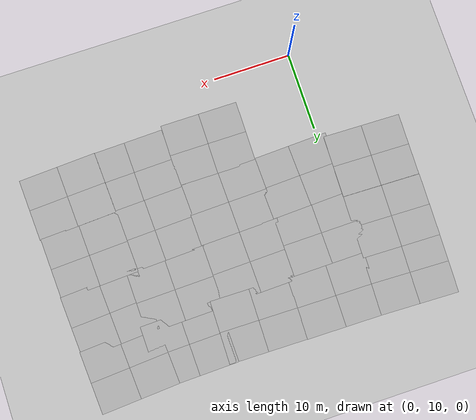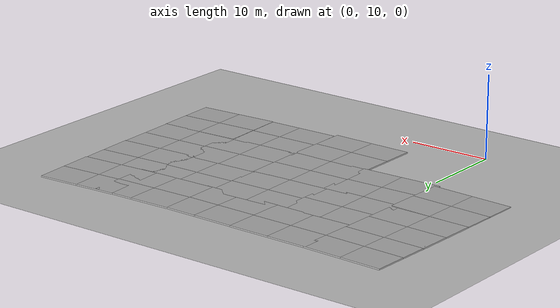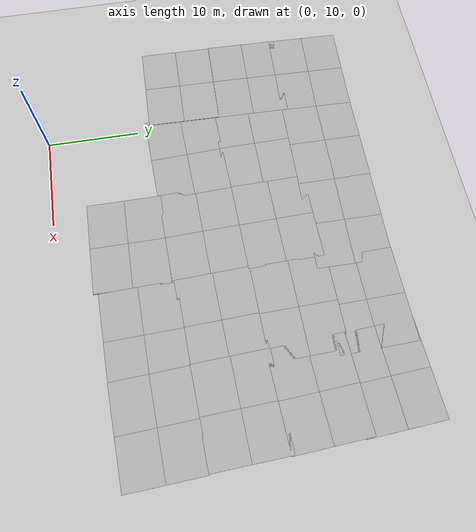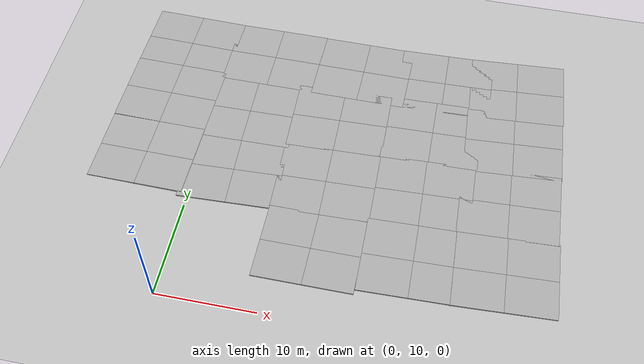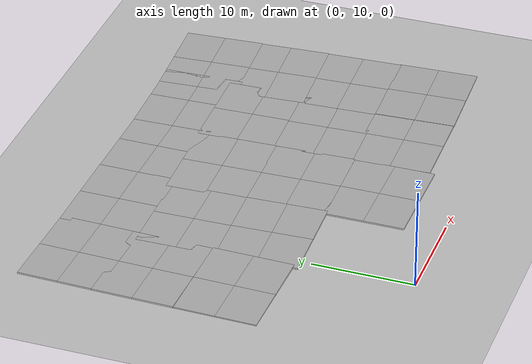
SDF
<sdf version="1.7">
 <world name="default">
  <model name="ground_plane">
   <static>1</static>
   <link name="link">
    <collision name="collision">
     <geometry><plane><normal>0 0 1</normal><size>100 100</size></plane></geometry>
     <surface><friction><ode><mu>100</mu><mu2>50</mu2></ode></friction></surface>
    </collision>
    <visual name="visual">
     <cast_shadows>0</cast_shadows>
     <geometry><plane><normal>0 0 1</normal><size>100 100</size></plane></geometry>
     <material>
      <script><uri>file://media/materials/scripts/gazebo.material</uri><name>Gazebo/Grey</name></script>
     </material>
    </visual>
   </link>
  </model>
  <model name="desert2_sample_7">
   <static>1</static>
   <link name="link">
    <collision name="collision"><geometry><box><size>8 10 0.2</size></box></geometry></collision>
    <visual name="visual_1">
     <pose>-2 2.5 0 0 -0 0</pose>
     <cast_shadows>0</cast_shadows>
     <geometry><box><size>4 5 0.2</size></box></geometry>
     <material>
      <script>
       <uri>model://desert2/materials/scripts</uri>
       <uri>model://desert2/materials/textures</uri>
       <name>vrc/mud</name>
      </script>
     </material>
    </visual>
    <visual name="visual_2">
     <pose>2 2.5 0 0 -0 0</pose>
     <cast_shadows>0</cast_shadows>
     <geometry><box><size>4 5 0.2</size></box></geometry>
     <material>
      <script>
       <uri>model://desert2/materials/scripts</uri>
       <uri>model://desert2/materials/textures</uri>
       <name>vrc/mud</name>
      </script>
     </material>
    </visual>
    <visual name="visual_3">
     <pose>2 -2.5 0 0 -0 0</pose>
     <cast_shadows>0</cast_shadows>
     <geometry><box><size>4 5 0.2</size></box></geometry>
     <material>
      <script>
       <uri>model://desert2/materials/scripts</uri>
       <uri>model://desert2/materials/textures</uri>
       <name>vrc/mud</name>
      </script>
     </material>
    </visual>
    <visual name="visual_4">
     <pose>-2 -2.5 0 0 -0 0</pose>
     <cast_shadows>0</cast_shadows>
     <geometry><box><size>4 5 0.2</size></box></geometry>
     <material>
      <script>
       <uri>model://desert2/materials/scripts</uri>
       <uri>model://desert2/materials/textures</uri>
       <name>vrc/mud</name>
      </script>
     </material>
    </visual>
   </link>
   <pose>-5.66168 25.5067 0.004447 0.010424 0.001386 -1.59096</pose>
  </model>
  <model name="desert2_sample_8">
   <static>1</static>
   <link name="link">
    <collision name="collision"><geometry><box><size>8 10 0.2</size></box></geometry></collision>
    <visual name="visual_1">
     <pose>-2 2.5 0 0 -0 0</pose>
     <cast_shadows>0</cast_shadows>
     <geometry><box><size>4 5 0.2</size></box></geometry>
     <material>
      <script>
       <uri>model://desert2/materials/scripts</uri>
       <uri>model://desert2/materials/textures</uri>
       <name>vrc/mud</name>
      </script>
     </material>
    </visual>
    <visual name="visual_2">
     <pose>2 2.5 0 0 -0 0</pose>
     <cast_shadows>0</cast_shadows>
     <geometry><box><size>4 5 0.2</size></box></geometry>
     <material>
      <script>
       <uri>model://desert2/materials/scripts</uri>
       <uri>model://desert2/materials/textures</uri>
       <name>vrc/mud</name>
      </script>
     </material>
    </visual>
    <visual name="visual_3">
     <pose>2 -2.5 0 0 -0 0</pose>
     <cast_shadows>0</cast_shadows>
     <geometry><box><size>4 5 0.2</size></box></geometry>
     <material>
      <script>
       <uri>model://desert2/materials/scripts</uri>
       <uri>model://desert2/materials/textures</uri>
       <name>vrc/mud</name>
      </script>
     </material>
    </visual>
    <visual name="visual_4">
     <pose>-2 -2.5 0 0 -0 0</pose>
     <cast_shadows>0</cast_shadows>
     <geometry><box><size>4 5 0.2</size></box></geometry>
     <material>
      <script>
       <uri>model://desert2/materials/scripts</uri>
       <uri>model://desert2/materials/textures</uri>
       <name>vrc/mud</name>
      </script>
     </material>
    </visual>
   </link>
   <pose>-5.50688 33.5237 0 0 0 -1.59348</pose>
  </model>
  <model name="desert2_sample_9">
   <static>1</static>
   <link name="link">
    <collision name="collision"><geometry><box><size>8 10 0.2</size></box></geometry></collision>
    <visual name="visual_1">
     <pose>-2 2.5 0 0 -0 0</pose>
     <cast_shadows>0</cast_shadows>
     <geometry><box><size>4 5 0.2</size></box></geometry>
     <material>
      <script>
       <uri>model://desert2/materials/scripts</uri>
       <uri>model://desert2/materials/textures</uri>
       <name>vrc/mud</name>
      </script>
     </material>
    </visual>
    <visual name="visual_2">
     <pose>2 2.5 0 0 -0 0</pose>
     <cast_shadows>0</cast_shadows>
     <geometry><box><size>4 5 0.2</size></box></geometry>
     <material>
      <script>
       <uri>model://desert2/materials/scripts</uri>
       <uri>model://desert2/materials/textures</uri>
       <name>vrc/mud</name>
      </script>
     </material>
    </visual>
    <visual name="visual_3">
     <pose>2 -2.5 0 0 -0 0</pose>
     <cast_shadows>0</cast_shadows>
     <geometry><box><size>4 5 0.2</size></box></geometry>
     <material>
      <script>
       <uri>model://desert2/materials/scripts</uri>
       <uri>model://desert2/materials/textures</uri>
       <name>vrc/mud</name>
      </script>
     </material>
    </visual>
    <visual name="visual_4">
     <pose>-2 -2.5 0 0 -0 0</pose>
     <cast_shadows>0</cast_shadows>
     <geometry><box><size>4 5 0.2</size></box></geometry>
     <material>
      <script>
       <uri>model://desert2/materials/scripts</uri>
       <uri>model://desert2/materials/textures</uri>
       <name>vrc/mud</name>
      </script>
     </material>
    </visual>
   </link>
   <pose>-5.29468 40.8805 0 0 0 -1.60132</pose>
  </model>
  <model name="desert2_sample_12">
   <static>1</static>
   <link name="link">
    <collision name="collision"><geometry><box><size>8 10 0.2</size></box></geometry></collision>
    <visual name="visual_1">
     <pose>-2 2.5 0 0 -0 0</pose>
     <cast_shadows>0</cast_shadows>
     <geometry><box><size>4 5 0.2</size></box></geometry>
     <material>
      <script>
       <uri>model://desert2/materials/scripts</uri>
       <uri>model://desert2/materials/textures</uri>
       <name>vrc/mud</name>
      </script>
     </material>
    </visual>
    <visual name="visual_2">
     <pose>2 2.5 0 0 -0 0</pose>
     <cast_shadows>0</cast_shadows>
     <geometry><box><size>4 5 0.2</size></box></geometry>
     <material>
      <script>
       <uri>model://desert2/materials/scripts</uri>
       <uri>model://desert2/materials/textures</uri>
       <name>vrc/mud</name>
      </script>
     </material>
    </visual>
    <visual name="visual_3">
     <pose>2 -2.5 0 0 -0 0</pose>
     <cast_shadows>0</cast_shadows>
     <geometry><box><size>4 5 0.2</size></box></geometry>
     <material>
      <script>
       <uri>model://desert2/materials/scripts</uri>
       <uri>model://desert2/materials/textures</uri>
       <name>vrc/mud</name>
      </script>
     </material>
    </visual>
    <visual name="visual_4">
     <pose>-2 -2.5 0 0 -0 0</pose>
     <cast_shadows>0</cast_shadows>
     <geometry><box><size>4 5 0.2</size></box></geometry>
     <material>
      <script>
       <uri>model://desert2/materials/scripts</uri>
       <uri>model://desert2/materials/textures</uri>
       <name>vrc/mud</name>
      </script>
     </material>
    </visual>
   </link>
   <pose>3.70647 25.1298 -0 0 0 -1.53348</pose>
  </model>
  <model name="desert2_sample_13">
   <static>1</static>
   <link name="link">
    <collision name="collision"><geometry><box><size>8 10 0.2</size></box></geometry></collision>
    <visual name="visual_1">
     <pose>-2 2.5 0 0 -0 0</pose>
     <cast_shadows>0</cast_shadows>
     <geometry><box><size>4 5 0.2</size></box></geometry>
     <material>
      <script>
       <uri>model://desert2/materials/scripts</uri>
       <uri>model://desert2/materials/textures</uri>
       <name>vrc/mud</name>
      </script>
     </material>
    </visual>
    <visual name="visual_2">
     <pose>2 2.5 0 0 -0 0</pose>
     <cast_shadows>0</cast_shadows>
     <geometry><box><size>4 5 0.2</size></box></geometry>
     <material>
      <script>
       <uri>model://desert2/materials/scripts</uri>
       <uri>model://desert2/materials/textures</uri>
       <name>vrc/mud</name>
      </script>
     </material>
    </visual>
    <visual name="visual_3">
     <pose>2 -2.5 0 0 -0 0</pose>
     <cast_shadows>0</cast_shadows>
     <geometry><box><size>4 5 0.2</size></box></geometry>
     <material>
      <script>
       <uri>model://desert2/materials/scripts</uri>
       <uri>model://desert2/materials/textures</uri>
       <name>vrc/mud</name>
      </script>
     </material>
    </visual>
    <visual name="visual_4">
     <pose>-2 -2.5 0 0 -0 0</pose>
     <cast_shadows>0</cast_shadows>
     <geometry><box><size>4 5 0.2</size></box></geometry>
     <material>
      <script>
       <uri>model://desert2/materials/scripts</uri>
       <uri>model://desert2/materials/textures</uri>
       <name>vrc/mud</name>
      </script>
     </material>
    </visual>
   </link>
   <pose>3.4677 32.8125 0 0 0 -1.55875</pose>
  </model>
  <model name="desert2_sample_14">
   <static>1</static>
   <link name="link">
    <collision name="collision"><geometry><box><size>8 10 0.2</size></box></geometry></collision>
    <visual name="visual_1">
     <pose>-2 2.5 0 0 -0 0</pose>
     <cast_shadows>0</cast_shadows>
     <geometry><box><size>4 5 0.2</size></box></geometry>
     <material>
      <script>
       <uri>model://desert2/materials/scripts</uri>
       <uri>model://desert2/materials/textures</uri>
       <name>vrc/mud</name>
      </script>
     </material>
    </visual>
    <visual name="visual_2">
     <pose>2 2.5 0 0 -0 0</pose>
     <cast_shadows>0</cast_shadows>
     <geometry><box><size>4 5 0.2</size></box></geometry>
     <material>
      <script>
       <uri>model://desert2/materials/scripts</uri>
       <uri>model://desert2/materials/textures</uri>
       <name>vrc/mud</name>
      </script>
     </material>
    </visual>
    <visual name="visual_3">
     <pose>2 -2.5 0 0 -0 0</pose>
     <cast_shadows>0</cast_shadows>
     <geometry><box><size>4 5 0.2</size></box></geometry>
     <material>
      <script>
       <uri>model://desert2/materials/scripts</uri>
       <uri>model://desert2/materials/textures</uri>
       <name>vrc/mud</name>
      </script>
     </material>
    </visual>
    <visual name="visual_4">
     <pose>-2 -2.5 0 0 -0 0</pose>
     <cast_shadows>0</cast_shadows>
     <geometry><box><size>4 5 0.2</size></box></geometry>
     <material>
      <script>
       <uri>model://desert2/materials/scripts</uri>
       <uri>model://desert2/materials/textures</uri>
       <name>vrc/mud</name>
      </script>
     </material>
    </visual>
   </link>
   <pose>4.33279 40.6976 0 0 0 -1.57803</pose>
  </model>
  <model name="desert2_sample_16">
   <static>1</static>
   <link name="link">
    <collision name="collision"><geometry><box><size>8 10 0.2</size></box></geometry></collision>
    <visual name="visual_1">
     <pose>-2 2.5 0 0 -0 0</pose>
     <cast_shadows>0</cast_shadows>
     <geometry><box><size>4 5 0.2</size></box></geometry>
     <material>
      <script>
       <uri>model://desert2/materials/scripts</uri>
       <uri>model://desert2/materials/textures</uri>
       <name>vrc/mud</name>
      </script>
     </material>
    </visual>
    <visual name="visual_2">
     <pose>2 2.5 0 0 -0 0</pose>
     <cast_shadows>0</cast_shadows>
     <geometry><box><size>4 5 0.2</size></box></geometry>
     <material>
      <script>
       <uri>model://desert2/materials/scripts</uri>
       <uri>model://desert2/materials/textures</uri>
       <name>vrc/mud</name>
      </script>
     </material>
    </visual>
    <visual name="visual_3">
     <pose>2 -2.5 0 0 -0 0</pose>
     <cast_shadows>0</cast_shadows>
     <geometry><box><size>4 5 0.2</size></box></geometry>
     <material>
      <script>
       <uri>model://desert2/materials/scripts</uri>
       <uri>model://desert2/materials/textures</uri>
       <name>vrc/mud</name>
      </script>
     </material>
    </visual>
    <visual name="visual_4">
     <pose>-2 -2.5 0 0 -0 0</pose>
     <cast_shadows>0</cast_shadows>
     <geometry><box><size>4 5 0.2</size></box></geometry>
     <material>
      <script>
       <uri>model://desert2/materials/scripts</uri>
       <uri>model://desert2/materials/textures</uri>
       <name>vrc/mud</name>
      </script>
     </material>
    </visual>
   </link>
   <pose>13.3363 17.6411 0 0 0 -1.5737</pose>
  </model>
  <model name="desert2_sample_17">
   <static>1</static>
   <link name="link">
    <collision name="collision"><geometry><box><size>8 10 0.2</size></box></geometry></collision>
    <visual name="visual_1">
     <pose>-2 2.5 0 0 -0 0</pose>
     <cast_shadows>0</cast_shadows>
     <geometry><box><size>4 5 0.2</size></box></geometry>
     <material>
      <script>
       <uri>model://desert2/materials/scripts</uri>
       <uri>model://desert2/materials/textures</uri>
       <name>vrc/mud</name>
      </script>
     </material>
    </visual>
    <visual name="visual_2">
     <pose>2 2.5 0 0 -0 0</pose>
     <cast_shadows>0</cast_shadows>
     <geometry><box><size>4 5 0.2</size></box></geometry>
     <material>
      <script>
       <uri>model://desert2/materials/scripts</uri>
       <uri>model://desert2/materials/textures</uri>
       <name>vrc/mud</name>
      </script>
     </material>
    </visual>
    <visual name="visual_3">
     <pose>2 -2.5 0 0 -0 0</pose>
     <cast_shadows>0</cast_shadows>
     <geometry><box><size>4 5 0.2</size></box></geometry>
     <material>
      <script>
       <uri>model://desert2/materials/scripts</uri>
       <uri>model://desert2/materials/textures</uri>
       <name>vrc/mud</name>
      </script>
     </material>
    </visual>
    <visual name="visual_4">
     <pose>-2 -2.5 0 0 -0 0</pose>
     <cast_shadows>0</cast_shadows>
     <geometry><box><size>4 5 0.2</size></box></geometry>
     <material>
      <script>
       <uri>model://desert2/materials/scripts</uri>
       <uri>model://desert2/materials/textures</uri>
       <name>vrc/mud</name>
      </script>
     </material>
    </visual>
   </link>
   <pose>13.2119 25.5266 0 0 0 -1.54503</pose>
  </model>
  <model name="desert2_sample_18">
   <static>1</static>
   <link name="link">
    <collision name="collision"><geometry><box><size>8 10 0.2</size></box></geometry></collision>
    <visual name="visual_1">
     <pose>-2 2.5 0 0 -0 0</pose>
     <cast_shadows>0</cast_shadows>
     <geometry><box><size>4 5 0.2</size></box></geometry>
     <material>
      <script>
       <uri>model://desert2/materials/scripts</uri>
       <uri>model://desert2/materials/textures</uri>
       <name>vrc/mud</name>
      </script>
     </material>
    </visual>
    <visual name="visual_2">
     <pose>2 2.5 0 0 -0 0</pose>
     <cast_shadows>0</cast_shadows>
     <geometry><box><size>4 5 0.2</size></box></geometry>
     <material>
      <script>
       <uri>model://desert2/materials/scripts</uri>
       <uri>model://desert2/materials/textures</uri>
       <name>vrc/mud</name>
      </script>
     </material>
    </visual>
    <visual name="visual_3">
     <pose>2 -2.5 0 0 -0 0</pose>
     <cast_shadows>0</cast_shadows>
     <geometry><box><size>4 5 0.2</size></box></geometry>
     <material>
      <script>
       <uri>model://desert2/materials/scripts</uri>
       <uri>model://desert2/materials/textures</uri>
       <name>vrc/mud</name>
      </script>
     </material>
    </visual>
    <visual name="visual_4">
     <pose>-2 -2.5 0 0 -0 0</pose>
     <cast_shadows>0</cast_shadows>
     <geometry><box><size>4 5 0.2</size></box></geometry>
     <material>
      <script>
       <uri>model://desert2/materials/scripts</uri>
       <uri>model://desert2/materials/textures</uri>
       <name>vrc/mud</name>
      </script>
     </material>
    </visual>
   </link>
   <pose>13.0324 33.4411 0 0 0 -1.54556</pose>
  </model>
  <model name="desert2_sample_19">
   <static>1</static>
   <link name="link">
    <collision name="collision"><geometry><box><size>8 10 0.2</size></box></geometry></collision>
    <visual name="visual_1">
     <pose>-2 2.5 0 0 -0 0</pose>
     <cast_shadows>0</cast_shadows>
     <geometry><box><size>4 5 0.2</size></box></geometry>
     <material>
      <script>
       <uri>model://desert2/materials/scripts</uri>
       <uri>model://desert2/materials/textures</uri>
       <name>vrc/mud</name>
      </script>
     </material>
    </visual>
    <visual name="visual_2">
     <pose>2 2.5 0 0 -0 0</pose>
     <cast_shadows>0</cast_shadows>
     <geometry><box><size>4 5 0.2</size></box></geometry>
     <material>
      <script>
       <uri>model://desert2/materials/scripts</uri>
       <uri>model://desert2/materials/textures</uri>
       <name>vrc/mud</name>
      </script>
     </material>
    </visual>
    <visual name="visual_3">
     <pose>2 -2.5 0 0 -0 0</pose>
     <cast_shadows>0</cast_shadows>
     <geometry><box><size>4 5 0.2</size></box></geometry>
     <material>
      <script>
       <uri>model://desert2/materials/scripts</uri>
       <uri>model://desert2/materials/textures</uri>
       <name>vrc/mud</name>
      </script>
     </material>
    </visual>
    <visual name="visual_4">
     <pose>-2 -2.5 0 0 -0 0</pose>
     <cast_shadows>0</cast_shadows>
     <geometry><box><size>4 5 0.2</size></box></geometry>
     <material>
      <script>
       <uri>model://desert2/materials/scripts</uri>
       <uri>model://desert2/materials/textures</uri>
       <name>vrc/mud</name>
      </script>
     </material>
    </visual>
   </link>
   <pose>14.2834 40.5757 0 0 0 -1.58177</pose>
  </model>
  <model name="desert2_sample_32">
   <static>1</static>
   <link name="link">
    <collision name="collision"><geometry><box><size>8 10 0.2</size></box></geometry></collision>
    <visual name="visual_1">
     <pose>-2 2.5 0 0 -0 0</pose>
     <cast_shadows>0</cast_shadows>
     <geometry><box><size>4 5 0.2</size></box></geometry>
     <material>
      <script>
       <uri>model://desert2/materials/scripts</uri>
       <uri>model://desert2/materials/textures</uri>
       <name>vrc/mud</name>
      </script>
     </material>
    </visual>
    <visual name="visual_2">
     <pose>2 2.5 0 0 -0 0</pose>
     <cast_shadows>0</cast_shadows>
     <geometry><box><size>4 5 0.2</size></box></geometry>
     <material>
      <script>
       <uri>model://desert2/materials/scripts</uri>
       <uri>model://desert2/materials/textures</uri>
       <name>vrc/mud</name>
      </script>
     </material>
    </visual>
    <visual name="visual_3">
     <pose>2 -2.5 0 0 -0 0</pose>
     <cast_shadows>0</cast_shadows>
     <geometry><box><size>4 5 0.2</size></box></geometry>
     <material>
      <script>
       <uri>model://desert2/materials/scripts</uri>
       <uri>model://desert2/materials/textures</uri>
       <name>vrc/mud</name>
      </script>
     </material>
    </visual>
    <visual name="visual_4">
     <pose>-2 -2.5 0 0 -0 0</pose>
     <cast_shadows>0</cast_shadows>
     <geometry><box><size>4 5 0.2</size></box></geometry>
     <material>
      <script>
       <uri>model://desert2/materials/scripts</uri>
       <uri>model://desert2/materials/textures</uri>
       <name>vrc/mud</name>
      </script>
     </material>
    </visual>
   </link>
   <pose>23.265 18.241 0 0 0 -1.54638</pose>
  </model>
  <model name="desert2_sample_33">
   <static>1</static>
   <link name="link">
    <collision name="collision"><geometry><box><size>8 10 0.2</size></box></geometry></collision>
    <visual name="visual_1">
     <pose>-2 2.5 0 0 -0 0</pose>
     <cast_shadows>0</cast_shadows>
     <geometry><box><size>4 5 0.2</size></box></geometry>
     <material>
      <script>
       <uri>model://desert2/materials/scripts</uri>
       <uri>model://desert2/materials/textures</uri>
       <name>vrc/mud</name>
      </script>
     </material>
    </visual>
    <visual name="visual_2">
     <pose>2 2.5 0 0 -0 0</pose>
     <cast_shadows>0</cast_shadows>
     <geometry><box><size>4 5 0.2</size></box></geometry>
     <material>
      <script>
       <uri>model://desert2/materials/scripts</uri>
       <uri>model://desert2/materials/textures</uri>
       <name>vrc/mud</name>
      </script>
     </material>
    </visual>
    <visual name="visual_3">
     <pose>2 -2.5 0 0 -0 0</pose>
     <cast_shadows>0</cast_shadows>
     <geometry><box><size>4 5 0.2</size></box></geometry>
     <material>
      <script>
       <uri>model://desert2/materials/scripts</uri>
       <uri>model://desert2/materials/textures</uri>
       <name>vrc/mud</name>
      </script>
     </material>
    </visual>
    <visual name="visual_4">
     <pose>-2 -2.5 0 0 -0 0</pose>
     <cast_shadows>0</cast_shadows>
     <geometry><box><size>4 5 0.2</size></box></geometry>
     <material>
      <script>
       <uri>model://desert2/materials/scripts</uri>
       <uri>model://desert2/materials/textures</uri>
       <name>vrc/mud</name>
      </script>
     </material>
    </visual>
   </link>
   <pose>32.0988 18.5361 0.003086 -0.006221 0.001803 -1.52544</pose>
  </model>
  <model name="desert2_sample_22">
   <static>1</static>
   <link name="link">
    <collision name="collision"><geometry><box><size>8 10 0.2</size></box></geometry></collision>
    <visual name="visual_1">
     <pose>-2 2.5 0 0 -0 0</pose>
     <cast_shadows>0</cast_shadows>
     <geometry><box><size>4 5 0.2</size></box></geometry>
     <material>
      <script>
       <uri>model://desert2/materials/scripts</uri>
       <uri>model://desert2/materials/textures</uri>
       <name>vrc/mud</name>
      </script>
     </material>
    </visual>
    <visual name="visual_2">
     <pose>2 2.5 0 0 -0 0</pose>
     <cast_shadows>0</cast_shadows>
     <geometry><box><size>4 5 0.2</size></box></geometry>
     <material>
      <script>
       <uri>model://desert2/materials/scripts</uri>
       <uri>model://desert2/materials/textures</uri>
       <name>vrc/mud</name>
      </script>
     </material>
    </visual>
    <visual name="visual_3">
     <pose>2 -2.5 0 0 -0 0</pose>
     <cast_shadows>0</cast_shadows>
     <geometry><box><size>4 5 0.2</size></box></geometry>
     <material>
      <script>
       <uri>model://desert2/materials/scripts</uri>
       <uri>model://desert2/materials/textures</uri>
       <name>vrc/mud</name>
      </script>
     </material>
    </visual>
    <visual name="visual_4">
     <pose>-2 -2.5 0 0 -0 0</pose>
     <cast_shadows>0</cast_shadows>
     <geometry><box><size>4 5 0.2</size></box></geometry>
     <material>
      <script>
       <uri>model://desert2/materials/scripts</uri>
       <uri>model://desert2/materials/textures</uri>
       <name>vrc/mud</name>
      </script>
     </material>
    </visual>
   </link>
   <pose>22.9946 26.0083 0 0 0 -1.53554</pose>
  </model>
  <model name="desert2_sample_23">
   <static>1</static>
   <link name="link">
    <collision name="collision"><geometry><box><size>8 10 0.2</size></box></geometry></collision>
    <visual name="visual_1">
     <pose>-2 2.5 0 0 -0 0</pose>
     <cast_shadows>0</cast_shadows>
     <geometry><box><size>4 5 0.2</size></box></geometry>
     <material>
      <script>
       <uri>model://desert2/materials/scripts</uri>
       <uri>model://desert2/materials/textures</uri>
       <name>vrc/mud</name>
      </script>
     </material>
    </visual>
    <visual name="visual_2">
     <pose>2 2.5 0 0 -0 0</pose>
     <cast_shadows>0</cast_shadows>
     <geometry><box><size>4 5 0.2</size></box></geometry>
     <material>
      <script>
       <uri>model://desert2/materials/scripts</uri>
       <uri>model://desert2/materials/textures</uri>
       <name>vrc/mud</name>
      </script>
     </material>
    </visual>
    <visual name="visual_3">
     <pose>2 -2.5 0 0 -0 0</pose>
     <cast_shadows>0</cast_shadows>
     <geometry><box><size>4 5 0.2</size></box></geometry>
     <material>
      <script>
       <uri>model://desert2/materials/scripts</uri>
       <uri>model://desert2/materials/textures</uri>
       <name>vrc/mud</name>
      </script>
     </material>
    </visual>
    <visual name="visual_4">
     <pose>-2 -2.5 0 0 -0 0</pose>
     <cast_shadows>0</cast_shadows>
     <geometry><box><size>4 5 0.2</size></box></geometry>
     <material>
      <script>
       <uri>model://desert2/materials/scripts</uri>
       <uri>model://desert2/materials/textures</uri>
       <name>vrc/mud</name>
      </script>
     </material>
    </visual>
   </link>
   <pose>31.6548 26.4364 0 0 0 -1.52993</pose>
  </model>
  <model name="desert2_sample_24">
   <static>1</static>
   <link name="link">
    <collision name="collision"><geometry><box><size>8 10 0.2</size></box></geometry></collision>
    <visual name="visual_1">
     <pose>-2 2.5 0 0 -0 0</pose>
     <cast_shadows>0</cast_shadows>
     <geometry><box><size>4 5 0.2</size></box></geometry>
     <material>
      <script>
       <uri>model://desert2/materials/scripts</uri>
       <uri>model://desert2/materials/textures</uri>
       <name>vrc/mud</name>
      </script>
     </material>
    </visual>
    <visual name="visual_2">
     <pose>2 2.5 0 0 -0 0</pose>
     <cast_shadows>0</cast_shadows>
     <geometry><box><size>4 5 0.2</size></box></geometry>
     <material>
      <script>
       <uri>model://desert2/materials/scripts</uri>
       <uri>model://desert2/materials/textures</uri>
       <name>vrc/mud</name>
      </script>
     </material>
    </visual>
    <visual name="visual_3">
     <pose>2 -2.5 0 0 -0 0</pose>
     <cast_shadows>0</cast_shadows>
     <geometry><box><size>4 5 0.2</size></box></geometry>
     <material>
      <script>
       <uri>model://desert2/materials/scripts</uri>
       <uri>model://desert2/materials/textures</uri>
       <name>vrc/mud</name>
      </script>
     </material>
    </visual>
    <visual name="visual_4">
     <pose>-2 -2.5 0 0 -0 0</pose>
     <cast_shadows>0</cast_shadows>
     <geometry><box><size>4 5 0.2</size></box></geometry>
     <material>
      <script>
       <uri>model://desert2/materials/scripts</uri>
       <uri>model://desert2/materials/textures</uri>
       <name>vrc/mud</name>
      </script>
     </material>
    </visual>
   </link>
   <pose>22.8875 33.7992 0 0 0 -1.54865</pose>
  </model>
  <model name="desert2_sample_25">
   <static>1</static>
   <link name="link">
    <collision name="collision"><geometry><box><size>8 10 0.2</size></box></geometry></collision>
    <visual name="visual_1">
     <pose>-2 2.5 0 0 -0 0</pose>
     <cast_shadows>0</cast_shadows>
     <geometry><box><size>4 5 0.2</size></box></geometry>
     <material>
      <script>
       <uri>model://desert2/materials/scripts</uri>
       <uri>model://desert2/materials/textures</uri>
       <name>vrc/mud</name>
      </script>
     </material>
    </visual>
    <visual name="visual_2">
     <pose>2 2.5 0 0 -0 0</pose>
     <cast_shadows>0</cast_shadows>
     <geometry><box><size>4 5 0.2</size></box></geometry>
     <material>
      <script>
       <uri>model://desert2/materials/scripts</uri>
       <uri>model://desert2/materials/textures</uri>
       <name>vrc/mud</name>
      </script>
     </material>
    </visual>
    <visual name="visual_3">
     <pose>2 -2.5 0 0 -0 0</pose>
     <cast_shadows>0</cast_shadows>
     <geometry><box><size>4 5 0.2</size></box></geometry>
     <material>
      <script>
       <uri>model://desert2/materials/scripts</uri>
       <uri>model://desert2/materials/textures</uri>
       <name>vrc/mud</name>
      </script>
     </material>
    </visual>
    <visual name="visual_4">
     <pose>-2 -2.5 0 0 -0 0</pose>
     <cast_shadows>0</cast_shadows>
     <geometry><box><size>4 5 0.2</size></box></geometry>
     <material>
      <script>
       <uri>model://desert2/materials/scripts</uri>
       <uri>model://desert2/materials/textures</uri>
       <name>vrc/mud</name>
      </script>
     </material>
    </visual>
   </link>
   <pose>31.344 34.0127 0 0 0 -1.51202</pose>
  </model>
  <model name="desert2_sample_26">
   <static>1</static>
   <link name="link">
    <collision name="collision"><geometry><box><size>8 10 0.2</size></box></geometry></collision>
    <visual name="visual_1">
     <pose>-2 2.5 0 0 -0 0</pose>
     <cast_shadows>0</cast_shadows>
     <geometry><box><size>4 5 0.2</size></box></geometry>
     <material>
      <script>
       <uri>model://desert2/materials/scripts</uri>
       <uri>model://desert2/materials/textures</uri>
       <name>vrc/mud</name>
      </script>
     </material>
    </visual>
    <visual name="visual_2">
     <pose>2 2.5 0 0 -0 0</pose>
     <cast_shadows>0</cast_shadows>
     <geometry><box><size>4 5 0.2</size></box></geometry>
     <material>
      <script>
       <uri>model://desert2/materials/scripts</uri>
       <uri>model://desert2/materials/textures</uri>
       <name>vrc/mud</name>
      </script>
     </material>
    </visual>
    <visual name="visual_3">
     <pose>2 -2.5 0 0 -0 0</pose>
     <cast_shadows>0</cast_shadows>
     <geometry><box><size>4 5 0.2</size></box></geometry>
     <material>
      <script>
       <uri>model://desert2/materials/scripts</uri>
       <uri>model://desert2/materials/textures</uri>
       <name>vrc/mud</name>
      </script>
     </material>
    </visual>
    <visual name="visual_4">
     <pose>-2 -2.5 0 0 -0 0</pose>
     <cast_shadows>0</cast_shadows>
     <geometry><box><size>4 5 0.2</size></box></geometry>
     <material>
      <script>
       <uri>model://desert2/materials/scripts</uri>
       <uri>model://desert2/materials/textures</uri>
       <name>vrc/mud</name>
      </script>
     </material>
    </visual>
   </link>
   <pose>23.247 40.6802 0 0 0 -1.54791</pose>
  </model>
  <model name="desert2_sample_27">
   <static>1</static>
   <link name="link">
    <collision name="collision"><geometry><box><size>8 10 0.2</size></box></geometry></collision>
    <visual name="visual_1">
     <pose>-2 2.5 0 0 -0 0</pose>
     <cast_shadows>0</cast_shadows>
     <geometry><box><size>4 5 0.2</size></box></geometry>
     <material>
      <script>
       <uri>model://desert2/materials/scripts</uri>
       <uri>model://desert2/materials/textures</uri>
       <name>vrc/mud</name>
      </script>
     </material>
    </visual>
    <visual name="visual_2">
     <pose>2 2.5 0 0 -0 0</pose>
     <cast_shadows>0</cast_shadows>
     <geometry><box><size>4 5 0.2</size></box></geometry>
     <material>
      <script>
       <uri>model://desert2/materials/scripts</uri>
       <uri>model://desert2/materials/textures</uri>
       <name>vrc/mud</name>
      </script>
     </material>
    </visual>
    <visual name="visual_3">
     <pose>2 -2.5 0 0 -0 0</pose>
     <cast_shadows>0</cast_shadows>
     <geometry><box><size>4 5 0.2</size></box></geometry>
     <material>
      <script>
       <uri>model://desert2/materials/scripts</uri>
       <uri>model://desert2/materials/textures</uri>
       <name>vrc/mud</name>
      </script>
     </material>
    </visual>
    <visual name="visual_4">
     <pose>-2 -2.5 0 0 -0 0</pose>
     <cast_shadows>0</cast_shadows>
     <geometry><box><size>4 5 0.2</size></box></geometry>
     <material>
      <script>
       <uri>model://desert2/materials/scripts</uri>
       <uri>model://desert2/materials/textures</uri>
       <name>vrc/mud</name>
      </script>
     </material>
    </visual>
   </link>
   <pose>31.0023 41.0699 -0 0 0 -1.50963</pose>
  </model>
 </world>
</sdf>
